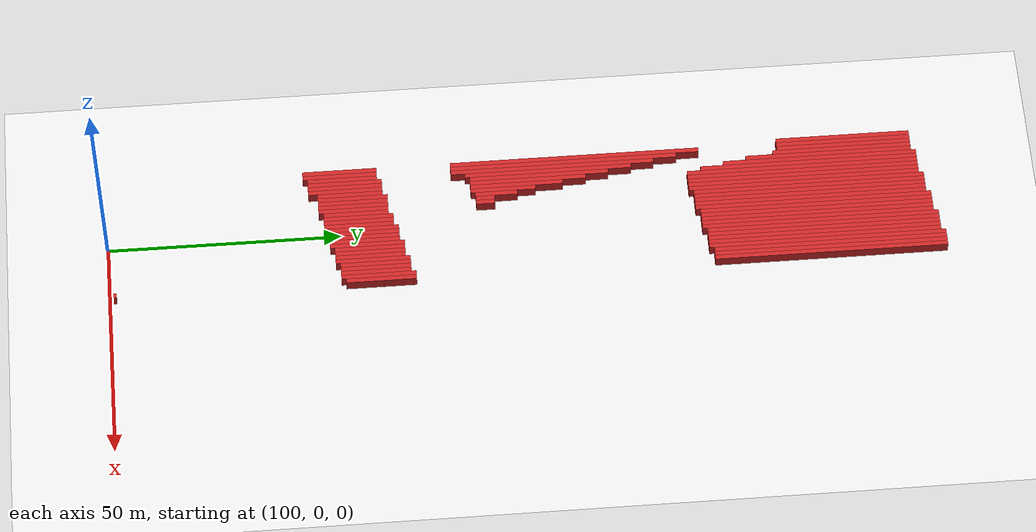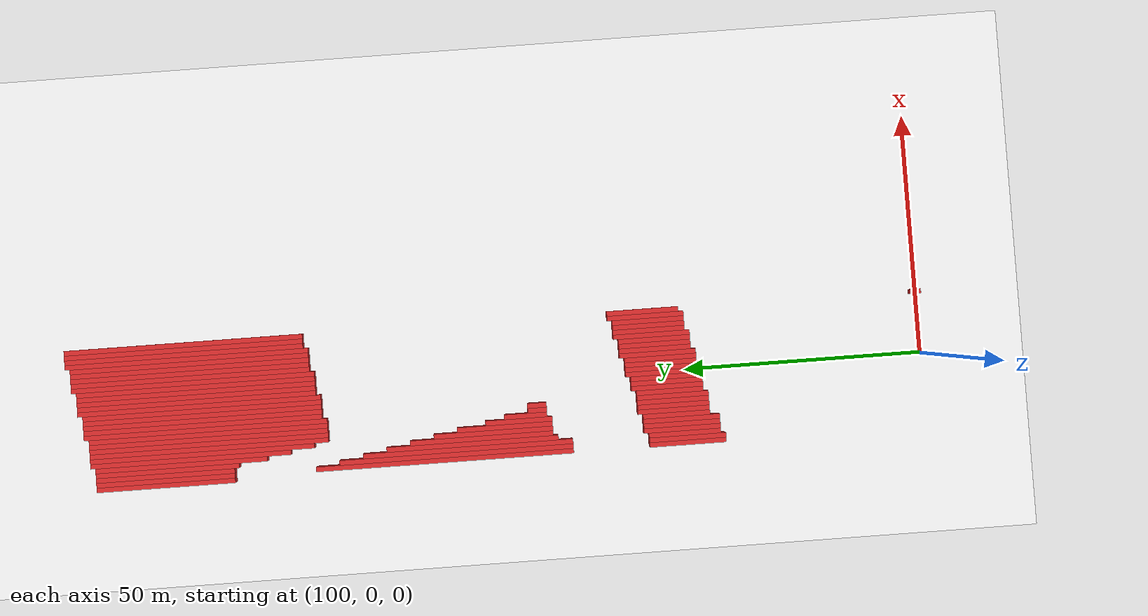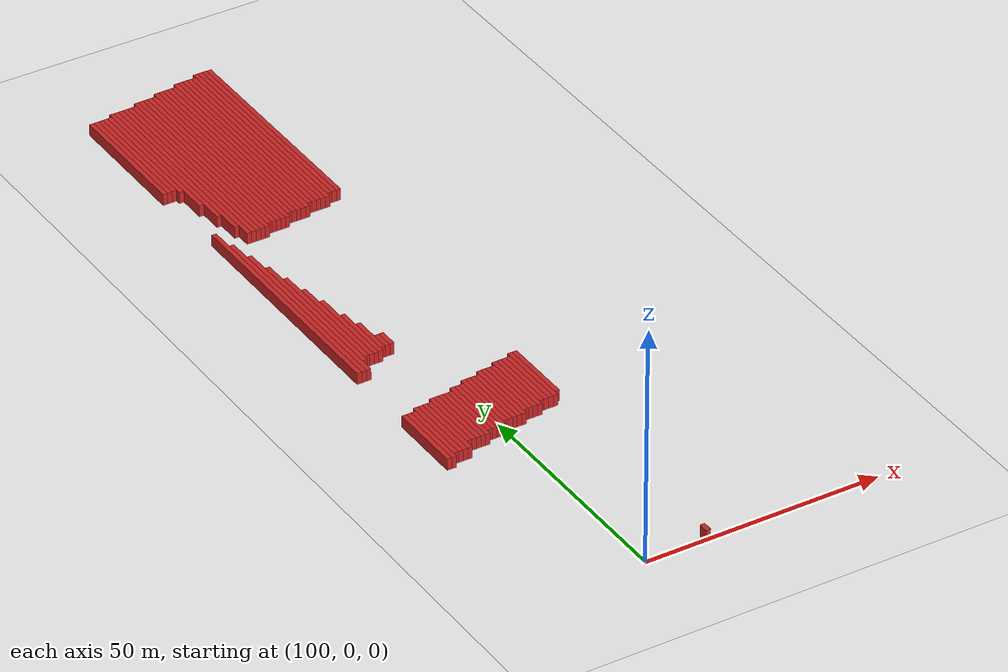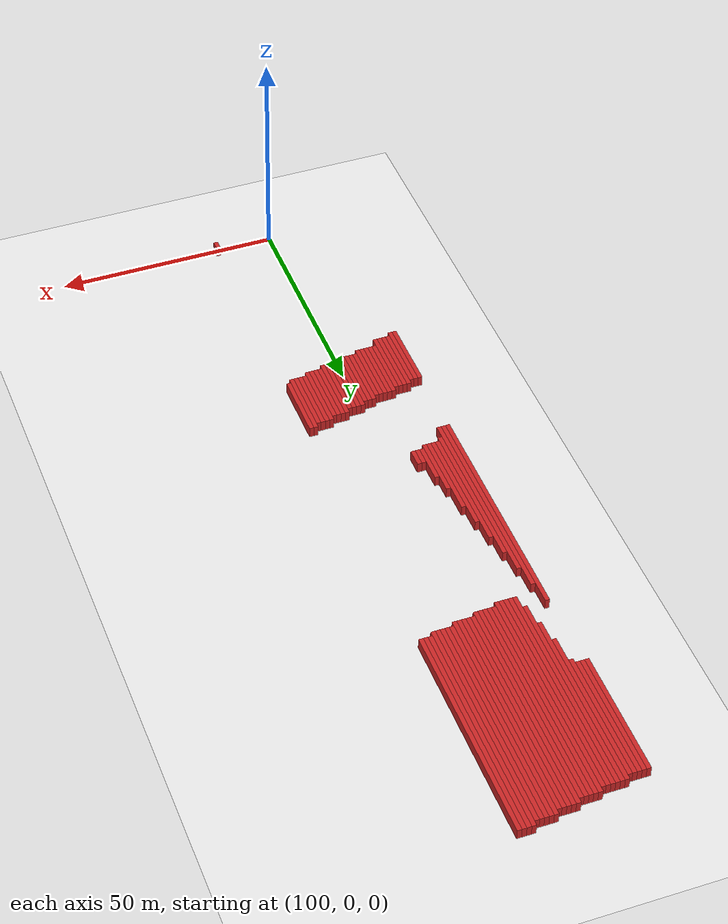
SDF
<sdf version="1.4">
 <world name="1_wall">
  <model name="ground_plane">
   <static>1</static>
   <link name="link">
    <collision name="collision">
     <geometry><plane><normal>0 0 1</normal><size>1000 1000</size></plane></geometry>
     <surface><friction><ode><mu>100</mu><mu2>50</mu2></ode></friction></surface>
    </collision>
    <visual name="visual">
     <cast_shadows>0</cast_shadows>
     <geometry><plane><normal>0 0 1</normal><size>10000 10000</size></plane></geometry>
     <material>
      <script><uri>file://media/materials/scripts/gazebo.material</uri><name>Gazebo/White</name></script>
     </material>
    </visual>
    <velocity_decay><linear>0</linear><angular>0</angular></velocity_decay>
   </link>
  </model>
  <model name="Wall_144">
   <static>1</static>
   <link name="Wall_144">
    <collision name="Wall_Collision_144">
     <geometry><box><size>29.0 1.0 2.5</size></box></geometry>
     <pose>0 0 1.25 0 -0 0</pose>
    </collision>
    <visual name="Wall_Visual_144">
     <pose>0 0 1.25 0 -0 0</pose>
     <geometry><box><size>29.0 1.0 2.5</size></box></geometry>
     <material>
      <script><uri>file://media/materials/scripts/gazebo.material</uri><name>Gazebo/Red</name></script>
     </material>
    </visual>
    <velocity_decay><linear>0</linear><angular>0</angular></velocity_decay>
    <pose>84.0 160.0 0 0 0 1.5707963267948966</pose>
   </link>
  </model>
  <model name="Wall_145">
   <static>1</static>
   <link name="Wall_145">
    <collision name="Wall_Collision_145">
     <geometry><box><size>16.0 1.0 2.5</size></box></geometry>
     <pose>0 0 1.25 0 -0 0</pose>
    </collision>
    <visual name="Wall_Visual_145">
     <pose>0 0 1.25 0 -0 0</pose>
     <geometry><box><size>16.0 1.0 2.5</size></box></geometry>
     <material>
      <script><uri>file://media/materials/scripts/gazebo.material</uri><name>Gazebo/Red</name></script>
     </material>
    </visual>
    <velocity_decay><linear>0</linear><angular>0</angular></velocity_decay>
    <pose>85.0 50.5 0 0 0 1.5707963267948966</pose>
   </link>
  </model>
  <model name="Wall_146">
   <static>1</static>
   <link name="Wall_146">
    <collision name="Wall_Collision_146">
     <geometry><box><size>54.0 1.0 2.5</size></box></geometry>
     <pose>0 0 1.25 0 -0 0</pose>
    </collision>
    <visual name="Wall_Visual_146">
     <pose>0 0 1.25 0 -0 0</pose>
     <geometry><box><size>54.0 1.0 2.5</size></box></geometry>
     <material>
      <script><uri>file://media/materials/scripts/gazebo.material</uri><name>Gazebo/Red</name></script>
     </material>
    </visual>
    <velocity_decay><linear>0</linear><angular>0</angular></velocity_decay>
    <pose>85.0 101.5 0 0 0 1.5707963267948966</pose>
   </link>
  </model>
  <model name="Wall_147">
   <static>1</static>
   <link name="Wall_147">
    <collision name="Wall_Collision_147">
     <geometry><box><size>29.0 1.0 2.5</size></box></geometry>
     <pose>0 0 1.25 0 -0 0</pose>
    </collision>
    <visual name="Wall_Visual_147">
     <pose>0 0 1.25 0 -0 0</pose>
     <geometry><box><size>29.0 1.0 2.5</size></box></geometry>
     <material>
      <script><uri>file://media/materials/scripts/gazebo.material</uri><name>Gazebo/Red</name></script>
     </material>
    </visual>
    <velocity_decay><linear>0</linear><angular>0</angular></velocity_decay>
    <pose>85.0 160.0 0 0 0 1.5707963267948966</pose>
   </link>
  </model>
  <model name="Wall_148">
   <static>1</static>
   <link name="Wall_148">
    <collision name="Wall_Collision_148">
     <geometry><box><size>16.0 1.0 2.5</size></box></geometry>
     <pose>0 0 1.25 0 -0 0</pose>
    </collision>
    <visual name="Wall_Visual_148">
     <pose>0 0 1.25 0 -0 0</pose>
     <geometry><box><size>16.0 1.0 2.5</size></box></geometry>
     <material>
      <script><uri>file://media/materials/scripts/gazebo.material</uri><name>Gazebo/Red</name></script>
     </material>
    </visual>
    <velocity_decay><linear>0</linear><angular>0</angular></velocity_decay>
    <pose>86.0 50.5 0 0 0 1.5707963267948966</pose>
   </link>
  </model>
  <model name="Wall_149">
   <static>1</static>
   <link name="Wall_149">
    <collision name="Wall_Collision_149">
     <geometry><box><size>49.0 1.0 2.5</size></box></geometry>
     <pose>0 0 1.25 0 -0 0</pose>
    </collision>
    <visual name="Wall_Visual_149">
     <pose>0 0 1.25 0 -0 0</pose>
     <geometry><box><size>49.0 1.0 2.5</size></box></geometry>
     <material>
      <script><uri>file://media/materials/scripts/gazebo.material</uri><name>Gazebo/Red</name></script>
     </material>
    </visual>
    <velocity_decay><linear>0</linear><angular>0</angular></velocity_decay>
    <pose>86.0 99.0 0 0 0 1.5707963267948966</pose>
   </link>
  </model>
  <model name="Wall_150">
   <static>1</static>
   <link name="Wall_150">
    <collision name="Wall_Collision_150">
     <geometry><box><size>29.0 1.0 2.5</size></box></geometry>
     <pose>0 0 1.25 0 -0 0</pose>
    </collision>
    <visual name="Wall_Visual_150">
     <pose>0 0 1.25 0 -0 0</pose>
     <geometry><box><size>29.0 1.0 2.5</size></box></geometry>
     <material>
      <script><uri>file://media/materials/scripts/gazebo.material</uri><name>Gazebo/Red</name></script>
     </material>
    </visual>
    <velocity_decay><linear>0</linear><angular>0</angular></velocity_decay>
    <pose>86.0 160.0 0 0 0 1.5707963267948966</pose>
   </link>
  </model>
  <model name="Wall_151">
   <static>1</static>
   <link name="Wall_151">
    <collision name="Wall_Collision_151">
     <geometry><box><size>15.0 1.0 2.5</size></box></geometry>
     <pose>0 0 1.25 0 -0 0</pose>
    </collision>
    <visual name="Wall_Visual_151">
     <pose>0 0 1.25 0 -0 0</pose>
     <geometry><box><size>15.0 1.0 2.5</size></box></geometry>
     <material>
      <script><uri>file://media/materials/scripts/gazebo.material</uri><name>Gazebo/Red</name></script>
     </material>
    </visual>
    <velocity_decay><linear>0</linear><angular>0</angular></velocity_decay>
    <pose>87.0 51.0 0 0 0 1.5707963267948966</pose>
   </link>
  </model>
  <model name="Wall_152">
   <static>1</static>
   <link name="Wall_152">
    <collision name="Wall_Collision_152">
     <geometry><box><size>44.0 1.0 2.5</size></box></geometry>
     <pose>0 0 1.25 0 -0 0</pose>
    </collision>
    <visual name="Wall_Visual_152">
     <pose>0 0 1.25 0 -0 0</pose>
     <geometry><box><size>44.0 1.0 2.5</size></box></geometry>
     <material>
      <script><uri>file://media/materials/scripts/gazebo.material</uri><name>Gazebo/Red</name></script>
     </material>
    </visual>
    <velocity_decay><linear>0</linear><angular>0</angular></velocity_decay>
    <pose>87.0 96.5 0 0 0 1.5707963267948966</pose>
   </link>
  </model>
  <model name="Wall_153">
   <static>1</static>
   <link name="Wall_153">
    <collision name="Wall_Collision_153">
     <geometry><box><size>30.0 1.0 2.5</size></box></geometry>
     <pose>0 0 1.25 0 -0 0</pose>
    </collision>
    <visual name="Wall_Visual_153">
     <pose>0 0 1.25 0 -0 0</pose>
     <geometry><box><size>30.0 1.0 2.5</size></box></geometry>
     <material>
      <script><uri>file://media/materials/scripts/gazebo.material</uri><name>Gazebo/Red</name></script>
     </material>
    </visual>
    <velocity_decay><linear>0</linear><angular>0</angular></velocity_decay>
    <pose>87.0 159.5 0 0 0 1.5707963267948966</pose>
   </link>
  </model>
  <model name="Wall_154">
   <static>1</static>
   <link name="Wall_154">
    <collision name="Wall_Collision_154">
     <geometry><box><size>16.0 1.0 2.5</size></box></geometry>
     <pose>0 0 1.25 0 -0 0</pose>
    </collision>
    <visual name="Wall_Visual_154">
     <pose>0 0 1.25 0 -0 0</pose>
     <geometry><box><size>16.0 1.0 2.5</size></box></geometry>
     <material>
      <script><uri>file://media/materials/scripts/gazebo.material</uri><name>Gazebo/Red</name></script>
     </material>
    </visual>
    <velocity_decay><linear>0</linear><angular>0</angular></velocity_decay>
    <pose>88.0 51.5 0 0 0 1.5707963267948966</pose>
   </link>
  </model>
  <model name="Wall_155">
   <static>1</static>
   <link name="Wall_155">
    <collision name="Wall_Collision_155">
     <geometry><box><size>36.0 1.0 2.5</size></box></geometry>
     <pose>0 0 1.25 0 -0 0</pose>
    </collision>
    <visual name="Wall_Visual_155">
     <pose>0 0 1.25 0 -0 0</pose>
     <geometry><box><size>36.0 1.0 2.5</size></box></geometry>
     <material>
      <script><uri>file://media/materials/scripts/gazebo.material</uri><name>Gazebo/Red</name></script>
     </material>
    </visual>
    <velocity_decay><linear>0</linear><angular>0</angular></velocity_decay>
    <pose>88.0 95.5 0 0 0 1.5707963267948966</pose>
   </link>
  </model>
  <model name="Wall_156">
   <static>1</static>
   <link name="Wall_156">
    <collision name="Wall_Collision_156">
     <geometry><box><size>36.0 1.0 2.5</size></box></geometry>
     <pose>0 0 1.25 0 -0 0</pose>
    </collision>
    <visual name="Wall_Visual_156">
     <pose>0 0 1.25 0 -0 0</pose>
     <geometry><box><size>36.0 1.0 2.5</size></box></geometry>
     <material>
      <script><uri>file://media/materials/scripts/gazebo.material</uri><name>Gazebo/Red</name></script>
     </material>
    </visual>
    <velocity_decay><linear>0</linear><angular>0</angular></velocity_decay>
    <pose>88.0 156.5 0 0 0 1.5707963267948966</pose>
   </link>
  </model>
  <model name="Wall_157">
   <static>1</static>
   <link name="Wall_157">
    <collision name="Wall_Collision_157">
     <geometry><box><size>16.0 1.0 2.5</size></box></geometry>
     <pose>0 0 1.25 0 -0 0</pose>
    </collision>
    <visual name="Wall_Visual_157">
     <pose>0 0 1.25 0 -0 0</pose>
     <geometry><box><size>16.0 1.0 2.5</size></box></geometry>
     <material>
      <script><uri>file://media/materials/scripts/gazebo.material</uri><name>Gazebo/Red</name></script>
     </material>
    </visual>
    <velocity_decay><linear>0</linear><angular>0</angular></velocity_decay>
    <pose>89.0 51.5 0 0 0 1.5707963267948966</pose>
   </link>
  </model>
  <model name="Wall_158">
   <static>1</static>
   <link name="Wall_158">
    <collision name="Wall_Collision_158">
     <geometry><box><size>30.0 1.0 2.5</size></box></geometry>
     <pose>0 0 1.25 0 -0 0</pose>
    </collision>
    <visual name="Wall_Visual_158">
     <pose>0 0 1.25 0 -0 0</pose>
     <geometry><box><size>30.0 1.0 2.5</size></box></geometry>
     <material>
      <script><uri>file://media/materials/scripts/gazebo.material</uri><name>Gazebo/Red</name></script>
     </material>
    </visual>
    <velocity_decay><linear>0</linear><angular>0</angular></velocity_decay>
    <pose>89.0 93.5 0 0 0 1.5707963267948966</pose>
   </link>
  </model>
  <model name="Wall_159">
   <static>1</static>
   <link name="Wall_159">
    <collision name="Wall_Collision_159">
     <geometry><box><size>42.0 1.0 2.5</size></box></geometry>
     <pose>0 0 1.25 0 -0 0</pose>
    </collision>
    <visual name="Wall_Visual_159">
     <pose>0 0 1.25 0 -0 0</pose>
     <geometry><box><size>42.0 1.0 2.5</size></box></geometry>
     <material>
      <script><uri>file://media/materials/scripts/gazebo.material</uri><name>Gazebo/Red</name></script>
     </material>
    </visual>
    <velocity_decay><linear>0</linear><angular>0</angular></velocity_decay>
    <pose>89.0 154.5 0 0 0 1.5707963267948966</pose>
   </link>
  </model>
  <model name="Wall_160">
   <static>1</static>
   <link name="Wall_160">
    <collision name="Wall_Collision_160">
     <geometry><box><size>16.0 1.0 2.5</size></box></geometry>
     <pose>0 0 1.25 0 -0 0</pose>
    </collision>
    <visual name="Wall_Visual_160">
     <pose>0 0 1.25 0 -0 0</pose>
     <geometry><box><size>16.0 1.0 2.5</size></box></geometry>
     <material>
      <script><uri>file://media/materials/scripts/gazebo.material</uri><name>Gazebo/Red</name></script>
     </material>
    </visual>
    <velocity_decay><linear>0</linear><angular>0</angular></velocity_decay>
    <pose>90.0 51.5 0 0 0 1.5707963267948966</pose>
   </link>
  </model>
  <model name="Wall_161">
   <static>1</static>
   <link name="Wall_161">
    <collision name="Wall_Collision_161">
     <geometry><box><size>25.0 1.0 2.5</size></box></geometry>
     <pose>0 0 1.25 0 -0 0</pose>
    </collision>
    <visual name="Wall_Visual_161">
     <pose>0 0 1.25 0 -0 0</pose>
     <geometry><box><size>25.0 1.0 2.5</size></box></geometry>
     <material>
      <script><uri>file://media/materials/scripts/gazebo.material</uri><name>Gazebo/Red</name></script>
     </material>
    </visual>
    <velocity_decay><linear>0</linear><angular>0</angular></velocity_decay>
    <pose>90.0 91.0 0 0 0 1.5707963267948966</pose>
   </link>
  </model>
  <model name="Wall_162">
   <static>1</static>
   <link name="Wall_162">
    <collision name="Wall_Collision_162">
     <geometry><box><size>47.0 1.0 2.5</size></box></geometry>
     <pose>0 0 1.25 0 -0 0</pose>
    </collision>
    <visual name="Wall_Visual_162">
     <pose>0 0 1.25 0 -0 0</pose>
     <geometry><box><size>47.0 1.0 2.5</size></box></geometry>
     <material>
      <script><uri>file://media/materials/scripts/gazebo.material</uri><name>Gazebo/Red</name></script>
     </material>
    </visual>
    <velocity_decay><linear>0</linear><angular>0</angular></velocity_decay>
    <pose>90.0 152.0 0 0 0 1.5707963267948966</pose>
   </link>
  </model>
  <model name="Wall_163">
   <static>1</static>
   <link name="Wall_163">
    <collision name="Wall_Collision_163">
     <geometry><box><size>14.0 1.0 2.5</size></box></geometry>
     <pose>0 0 1.25 0 -0 0</pose>
    </collision>
    <visual name="Wall_Visual_163">
     <pose>0 0 1.25 0 -0 0</pose>
     <geometry><box><size>14.0 1.0 2.5</size></box></geometry>
     <material>
      <script><uri>file://media/materials/scripts/gazebo.material</uri><name>Gazebo/Red</name></script>
     </material>
    </visual>
    <velocity_decay><linear>0</linear><angular>0</angular></velocity_decay>
    <pose>91.0 52.5 0 0 0 1.5707963267948966</pose>
   </link>
  </model>
  <model name="Wall_164">
   <static>1</static>
   <link name="Wall_164">
    <collision name="Wall_Collision_164">
     <geometry><box><size>20.0 1.0 2.5</size></box></geometry>
     <pose>0 0 1.25 0 -0 0</pose>
    </collision>
    <visual name="Wall_Visual_164">
     <pose>0 0 1.25 0 -0 0</pose>
     <geometry><box><size>20.0 1.0 2.5</size></box></geometry>
     <material>
      <script><uri>file://media/materials/scripts/gazebo.material</uri><name>Gazebo/Red</name></script>
     </material>
    </visual>
    <velocity_decay><linear>0</linear><angular>0</angular></velocity_decay>
    <pose>91.0 88.5 0 0 0 1.5707963267948966</pose>
   </link>
  </model>
  <model name="Wall_165">
   <static>1</static>
   <link name="Wall_165">
    <collision name="Wall_Collision_165">
     <geometry><box><size>50.0 1.0 2.5</size></box></geometry>
     <pose>0 0 1.25 0 -0 0</pose>
    </collision>
    <visual name="Wall_Visual_165">
     <pose>0 0 1.25 0 -0 0</pose>
     <geometry><box><size>50.0 1.0 2.5</size></box></geometry>
     <material>
      <script><uri>file://media/materials/scripts/gazebo.material</uri><name>Gazebo/Red</name></script>
     </material>
    </visual>
    <velocity_decay><linear>0</linear><angular>0</angular></velocity_decay>
    <pose>91.0 150.5 0 0 0 1.5707963267948966</pose>
   </link>
  </model>
  <model name="Wall_166">
   <static>1</static>
   <link name="Wall_166">
    <collision name="Wall_Collision_166">
     <geometry><box><size>15.0 1.0 2.5</size></box></geometry>
     <pose>0 0 1.25 0 -0 0</pose>
    </collision>
    <visual name="Wall_Visual_166">
     <pose>0 0 1.25 0 -0 0</pose>
     <geometry><box><size>15.0 1.0 2.5</size></box></geometry>
     <material>
      <script><uri>file://media/materials/scripts/gazebo.material</uri><name>Gazebo/Red</name></script>
     </material>
    </visual>
    <velocity_decay><linear>0</linear><angular>0</angular></velocity_decay>
    <pose>92.0 53.0 0 0 0 1.5707963267948966</pose>
   </link>
  </model>
  <model name="Wall_167">
   <static>1</static>
   <link name="Wall_167">
    <collision name="Wall_Collision_167">
     <geometry><box><size>14.0 1.0 2.5</size></box></geometry>
     <pose>0 0 1.25 0 -0 0</pose>
    </collision>
    <visual name="Wall_Visual_167">
     <pose>0 0 1.25 0 -0 0</pose>
     <geometry><box><size>14.0 1.0 2.5</size></box></geometry>
     <material>
      <script><uri>file://media/materials/scripts/gazebo.material</uri><name>Gazebo/Red</name></script>
     </material>
    </visual>
    <velocity_decay><linear>0</linear><angular>0</angular></velocity_decay>
    <pose>92.0 85.5 0 0 0 1.5707963267948966</pose>
   </link>
  </model>
  <model name="Wall_168">
   <static>1</static>
   <link name="Wall_168">
    <collision name="Wall_Collision_168">
     <geometry><box><size>50.0 1.0 2.5</size></box></geometry>
     <pose>0 0 1.25 0 -0 0</pose>
    </collision>
    <visual name="Wall_Visual_168">
     <pose>0 0 1.25 0 -0 0</pose>
     <geometry><box><size>50.0 1.0 2.5</size></box></geometry>
     <material>
      <script><uri>file://media/materials/scripts/gazebo.material</uri><name>Gazebo/Red</name></script>
     </material>
    </visual>
    <velocity_decay><linear>0</linear><angular>0</angular></velocity_decay>
    <pose>92.0 150.5 0 0 0 1.5707963267948966</pose>
   </link>
  </model>
  <model name="Wall_169">
   <static>1</static>
   <link name="Wall_169">
    <collision name="Wall_Collision_169">
     <geometry><box><size>15.0 1.0 2.5</size></box></geometry>
     <pose>0 0 1.25 0 -0 0</pose>
    </collision>
    <visual name="Wall_Visual_169">
     <pose>0 0 1.25 0 -0 0</pose>
     <geometry><box><size>15.0 1.0 2.5</size></box></geometry>
     <material>
      <script><uri>file://media/materials/scripts/gazebo.material</uri><name>Gazebo/Red</name></script>
     </material>
    </visual>
    <velocity_decay><linear>0</linear><angular>0</angular></velocity_decay>
    <pose>93.0 53.0 0 0 0 1.5707963267948966</pose>
   </link>
  </model>
  <model name="Wall_170">
   <static>1</static>
   <link name="Wall_170">
    <collision name="Wall_Collision_170">
     <geometry><box><size>9.0 1.0 2.5</size></box></geometry>
     <pose>0 0 1.25 0 -0 0</pose>
    </collision>
    <visual name="Wall_Visual_170">
     <pose>0 0 1.25 0 -0 0</pose>
     <geometry><box><size>9.0 1.0 2.5</size></box></geometry>
     <material>
      <script><uri>file://media/materials/scripts/gazebo.material</uri><name>Gazebo/Red</name></script>
     </material>
    </visual>
    <velocity_decay><linear>0</linear><angular>0</angular></velocity_decay>
    <pose>93.0 84.0 0 0 0 1.5707963267948966</pose>
   </link>
  </model>
  <model name="Wall_171">
   <static>1</static>
   <link name="Wall_171">
    <collision name="Wall_Collision_171">
     <geometry><box><size>50.0 1.0 2.5</size></box></geometry>
     <pose>0 0 1.25 0 -0 0</pose>
    </collision>
    <visual name="Wall_Visual_171">
     <pose>0 0 1.25 0 -0 0</pose>
     <geometry><box><size>50.0 1.0 2.5</size></box></geometry>
     <material>
      <script><uri>file://media/materials/scripts/gazebo.material</uri><name>Gazebo/Red</name></script>
     </material>
    </visual>
    <velocity_decay><linear>0</linear><angular>0</angular></velocity_decay>
    <pose>93.0 150.5 0 0 0 1.5707963267948966</pose>
   </link>
  </model>
  <model name="Wall_172">
   <static>1</static>
   <link name="Wall_172">
    <collision name="Wall_Collision_172">
     <geometry><box><size>15.0 1.0 2.5</size></box></geometry>
     <pose>0 0 1.25 0 -0 0</pose>
    </collision>
    <visual name="Wall_Visual_172">
     <pose>0 0 1.25 0 -0 0</pose>
     <geometry><box><size>15.0 1.0 2.5</size></box></geometry>
     <material>
      <script><uri>file://media/materials/scripts/gazebo.material</uri><name>Gazebo/Red</name></script>
     </material>
    </visual>
    <velocity_decay><linear>0</linear><angular>0</angular></velocity_decay>
    <pose>94.0 53.0 0 0 0 1.5707963267948966</pose>
   </link>
  </model>
  <model name="Wall_173">
   <static>1</static>
   <link name="Wall_173">
    <collision name="Wall_Collision_173">
     <geometry><box><size>4.0 1.0 2.5</size></box></geometry>
     <pose>0 0 1.25 0 -0 0</pose>
    </collision>
    <visual name="Wall_Visual_173">
     <pose>0 0 1.25 0 -0 0</pose>
     <geometry><box><size>4.0 1.0 2.5</size></box></geometry>
     <material>
      <script><uri>file://media/materials/scripts/gazebo.material</uri><name>Gazebo/Red</name></script>
     </material>
    </visual>
    <velocity_decay><linear>0</linear><angular>0</angular></velocity_decay>
    <pose>94.0 81.5 0 0 0 1.5707963267948966</pose>
   </link>
  </model>
  <model name="Wall_174">
   <static>1</static>
   <link name="Wall_174">
    <collision name="Wall_Collision_174">
     <geometry><box><size>50.0 1.0 2.5</size></box></geometry>
     <pose>0 0 1.25 0 -0 0</pose>
    </collision>
    <visual name="Wall_Visual_174">
     <pose>0 0 1.25 0 -0 0</pose>
     <geometry><box><size>50.0 1.0 2.5</size></box></geometry>
     <material>
      <script><uri>file://media/materials/scripts/gazebo.material</uri><name>Gazebo/Red</name></script>
     </material>
    </visual>
    <velocity_decay><linear>0</linear><angular>0</angular></velocity_decay>
    <pose>94.0 150.5 0 0 0 1.5707963267948966</pose>
   </link>
  </model>
  <model name="Wall_175">
   <static>1</static>
   <link name="Wall_175">
    <collision name="Wall_Collision_175">
     <geometry><box><size>15.0 1.0 2.5</size></box></geometry>
     <pose>0 0 1.25 0 -0 0</pose>
    </collision>
    <visual name="Wall_Visual_175">
     <pose>0 0 1.25 0 -0 0</pose>
     <geometry><box><size>15.0 1.0 2.5</size></box></geometry>
     <material>
      <script><uri>file://media/materials/scripts/gazebo.material</uri><name>Gazebo/Red</name></script>
     </material>
    </visual>
    <velocity_decay><linear>0</linear><angular>0</angular></velocity_decay>
    <pose>95.0 53.0 0 0 0 1.5707963267948966</pose>
   </link>
  </model>
  <model name="Wall_176">
   <static>1</static>
   <link name="Wall_176">
    <collision name="Wall_Collision_176">
     <geometry><box><size>4.0 1.0 2.5</size></box></geometry>
     <pose>0 0 1.25 0 -0 0</pose>
    </collision>
    <visual name="Wall_Visual_176">
     <pose>0 0 1.25 0 -0 0</pose>
     <geometry><box><size>4.0 1.0 2.5</size></box></geometry>
     <material>
      <script><uri>file://media/materials/scripts/gazebo.material</uri><name>Gazebo/Red</name></script>
     </material>
    </visual>
    <velocity_decay><linear>0</linear><angular>0</angular></velocity_decay>
    <pose>95.0 81.5 0 0 0 1.5707963267948966</pose>
   </link>
  </model>
  <model name="Wall_177">
   <static>1</static>
   <link name="Wall_177">
    <collision name="Wall_Collision_177">
     <geometry><box><size>51.0 1.0 2.5</size></box></geometry>
     <pose>0 0 1.25 0 -0 0</pose>
    </collision>
    <visual name="Wall_Visual_177">
     <pose>0 0 1.25 0 -0 0</pose>
     <geometry><box><size>51.0 1.0 2.5</size></box></geometry>
     <material>
      <script><uri>file://media/materials/scripts/gazebo.material</uri><name>Gazebo/Red</name></script>
     </material>
    </visual>
    <velocity_decay><linear>0</linear><angular>0</angular></velocity_decay>
    <pose>95.0 151.0 0 0 0 1.5707963267948966</pose>
   </link>
  </model>
  <model name="Wall_178">
   <static>1</static>
   <link name="Wall_178">
    <collision name="Wall_Collision_178">
     <geometry><box><size>14.0 1.0 2.5</size></box></geometry>
     <pose>0 0 1.25 0 -0 0</pose>
    </collision>
    <visual name="Wall_Visual_178">
     <pose>0 0 1.25 0 -0 0</pose>
     <geometry><box><size>14.0 1.0 2.5</size></box></geometry>
     <material>
      <script><uri>file://media/materials/scripts/gazebo.material</uri><name>Gazebo/Red</name></script>
     </material>
    </visual>
    <velocity_decay><linear>0</linear><angular>0</angular></velocity_decay>
    <pose>96.0 53.5 0 0 0 1.5707963267948966</pose>
   </link>
  </model>
  <model name="Wall_179">
   <static>1</static>
   <link name="Wall_179">
    <collision name="Wall_Collision_179">
     <geometry><box><size>50.0 1.0 2.5</size></box></geometry>
     <pose>0 0 1.25 0 -0 0</pose>
    </collision>
    <visual name="Wall_Visual_179">
     <pose>0 0 1.25 0 -0 0</pose>
     <geometry><box><size>50.0 1.0 2.5</size></box></geometry>
     <material>
      <script><uri>file://media/materials/scripts/gazebo.material</uri><name>Gazebo/Red</name></script>
     </material>
    </visual>
    <velocity_decay><linear>0</linear><angular>0</angular></velocity_decay>
    <pose>96.0 151.5 0 0 0 1.5707963267948966</pose>
   </link>
  </model>
  <model name="Wall_180">
   <static>1</static>
   <link name="Wall_180">
    <collision name="Wall_Collision_180">
     <geometry><box><size>15.0 1.0 2.5</size></box></geometry>
     <pose>0 0 1.25 0 -0 0</pose>
    </collision>
    <visual name="Wall_Visual_180">
     <pose>0 0 1.25 0 -0 0</pose>
     <geometry><box><size>15.0 1.0 2.5</size></box></geometry>
     <material>
      <script><uri>file://media/materials/scripts/gazebo.material</uri><name>Gazebo/Red</name></script>
     </material>
    </visual>
    <velocity_decay><linear>0</linear><angular>0</angular></velocity_decay>
    <pose>97.0 54.0 0 0 0 1.5707963267948966</pose>
   </link>
  </model>
  <model name="Wall_181">
   <static>1</static>
   <link name="Wall_181">
    <collision name="Wall_Collision_181">
     <geometry><box><size>50.0 1.0 2.5</size></box></geometry>
     <pose>0 0 1.25 0 -0 0</pose>
    </collision>
    <visual name="Wall_Visual_181">
     <pose>0 0 1.25 0 -0 0</pose>
     <geometry><box><size>50.0 1.0 2.5</size></box></geometry>
     <material>
      <script><uri>file://media/materials/scripts/gazebo.material</uri><name>Gazebo/Red</name></script>
     </material>
    </visual>
    <velocity_decay><linear>0</linear><angular>0</angular></velocity_decay>
    <pose>97.0 151.5 0 0 0 1.5707963267948966</pose>
   </link>
  </model>
  <model name="Wall_182">
   <static>1</static>
   <link name="Wall_182">
    <collision name="Wall_Collision_182">
     <geometry><box><size>15.0 1.0 2.5</size></box></geometry>
     <pose>0 0 1.25 0 -0 0</pose>
    </collision>
    <visual name="Wall_Visual_182">
     <pose>0 0 1.25 0 -0 0</pose>
     <geometry><box><size>15.0 1.0 2.5</size></box></geometry>
     <material>
      <script><uri>file://media/materials/scripts/gazebo.material</uri><name>Gazebo/Red</name></script>
     </material>
    </visual>
    <velocity_decay><linear>0</linear><angular>0</angular></velocity_decay>
    <pose>98.0 54.0 0 0 0 1.5707963267948966</pose>
   </link>
  </model>
  <model name="Wall_183">
   <static>1</static>
   <link name="Wall_183">
    <collision name="Wall_Collision_183">
     <geometry><box><size>50.0 1.0 2.5</size></box></geometry>
     <pose>0 0 1.25 0 -0 0</pose>
    </collision>
    <visual name="Wall_Visual_183">
     <pose>0 0 1.25 0 -0 0</pose>
     <geometry><box><size>50.0 1.0 2.5</size></box></geometry>
     <material>
      <script><uri>file://media/materials/scripts/gazebo.material</uri><name>Gazebo/Red</name></script>
     </material>
    </visual>
    <velocity_decay><linear>0</linear><angular>0</angular></velocity_decay>
    <pose>98.0 151.5 0 0 0 1.5707963267948966</pose>
   </link>
  </model>
  <model name="Wall_184">
   <static>1</static>
   <link name="Wall_184">
    <collision name="Wall_Collision_184">
     <geometry><box><size>15.0 1.0 2.5</size></box></geometry>
     <pose>0 0 1.25 0 -0 0</pose>
    </collision>
    <visual name="Wall_Visual_184">
     <pose>0 0 1.25 0 -0 0</pose>
     <geometry><box><size>15.0 1.0 2.5</size></box></geometry>
     <material>
      <script><uri>file://media/materials/scripts/gazebo.material</uri><name>Gazebo/Red</name></script>
     </material>
    </visual>
    <velocity_decay><linear>0</linear><angular>0</angular></velocity_decay>
    <pose>99.0 54.0 0 0 0 1.5707963267948966</pose>
   </link>
  </model>
  <model name="Wall_185">
   <static>1</static>
   <link name="Wall_185">
    <collision name="Wall_Collision_185">
     <geometry><box><size>50.0 1.0 2.5</size></box></geometry>
     <pose>0 0 1.25 0 -0 0</pose>
    </collision>
    <visual name="Wall_Visual_185">
     <pose>0 0 1.25 0 -0 0</pose>
     <geometry><box><size>50.0 1.0 2.5</size></box></geometry>
     <material>
      <script><uri>file://media/materials/scripts/gazebo.material</uri><name>Gazebo/Red</name></script>
     </material>
    </visual>
    <velocity_decay><linear>0</linear><angular>0</angular></velocity_decay>
    <pose>99.0 151.5 0 0 0 1.5707963267948966</pose>
   </link>
  </model>
  <model name="Wall_186">
   <static>1</static>
   <link name="Wall_186">
    <collision name="Wall_Collision_186">
     <geometry><box><size>15.0 1.0 2.5</size></box></geometry>
     <pose>0 0 1.25 0 -0 0</pose>
    </collision>
    <visual name="Wall_Visual_186">
     <pose>0 0 1.25 0 -0 0</pose>
     <geometry><box><size>15.0 1.0 2.5</size></box></geometry>
     <material>
      <script><uri>file://media/materials/scripts/gazebo.material</uri><name>Gazebo/Red</name></script>
     </material>
    </visual>
    <velocity_decay><linear>0</linear><angular>0</angular></velocity_decay>
    <pose>100.0 55.0 0 0 0 1.5707963267948966</pose>
   </link>
  </model>
  <model name="Wall_187">
   <static>1</static>
   <link name="Wall_187">
    <collision name="Wall_Collision_187">
     <geometry><box><size>51.0 1.0 2.5</size></box></geometry>
     <pose>0 0 1.25 0 -0 0</pose>
    </collision>
    <visual name="Wall_Visual_187">
     <pose>0 0 1.25 0 -0 0</pose>
     <geometry><box><size>51.0 1.0 2.5</size></box></geometry>
     <material>
      <script><uri>file://media/materials/scripts/gazebo.material</uri><name>Gazebo/Red</name></script>
     </material>
    </visual>
    <velocity_decay><linear>0</linear><angular>0</angular></velocity_decay>
    <pose>100.0 152.0 0 0 0 1.5707963267948966</pose>
   </link>
  </model>
  <model name="Wall_188">
   <static>1</static>
   <link name="Wall_188">
    <collision name="Wall_Collision_188">
     <geometry><box><size>15.0 1.0 2.5</size></box></geometry>
     <pose>0 0 1.25 0 -0 0</pose>
    </collision>
    <visual name="Wall_Visual_188">
     <pose>0 0 1.25 0 -0 0</pose>
     <geometry><box><size>15.0 1.0 2.5</size></box></geometry>
     <material>
      <script><uri>file://media/materials/scripts/gazebo.material</uri><name>Gazebo/Red</name></script>
     </material>
    </visual>
    <velocity_decay><linear>0</linear><angular>0</angular></velocity_decay>
    <pose>101.0 55.0 0 0 0 1.5707963267948966</pose>
   </link>
  </model>
  <model name="Wall_189">
   <static>1</static>
   <link name="Wall_189">
    <collision name="Wall_Collision_189">
     <geometry><box><size>50.0 1.0 2.5</size></box></geometry>
     <pose>0 0 1.25 0 -0 0</pose>
    </collision>
    <visual name="Wall_Visual_189">
     <pose>0 0 1.25 0 -0 0</pose>
     <geometry><box><size>50.0 1.0 2.5</size></box></geometry>
     <material>
      <script><uri>file://media/materials/scripts/gazebo.material</uri><name>Gazebo/Red</name></script>
     </material>
    </visual>
    <velocity_decay><linear>0</linear><angular>0</angular></velocity_decay>
    <pose>101.0 152.5 0 0 0 1.5707963267948966</pose>
   </link>
  </model>
  <model name="Wall_190">
   <static>1</static>
   <link name="Wall_190">
    <collision name="Wall_Collision_190">
     <geometry><box><size>15.0 1.0 2.5</size></box></geometry>
     <pose>0 0 1.25 0 -0 0</pose>
    </collision>
    <visual name="Wall_Visual_190">
     <pose>0 0 1.25 0 -0 0</pose>
     <geometry><box><size>15.0 1.0 2.5</size></box></geometry>
     <material>
      <script><uri>file://media/materials/scripts/gazebo.material</uri><name>Gazebo/Red</name></script>
     </material>
    </visual>
    <velocity_decay><linear>0</linear><angular>0</angular></velocity_decay>
    <pose>102.0 55.0 0 0 0 1.5707963267948966</pose>
   </link>
  </model>
  <model name="Wall_191">
   <static>1</static>
   <link name="Wall_191">
    <collision name="Wall_Collision_191">
     <geometry><box><size>50.0 1.0 2.5</size></box></geometry>
     <pose>0 0 1.25 0 -0 0</pose>
    </collision>
    <visual name="Wall_Visual_191">
     <pose>0 0 1.25 0 -0 0</pose>
     <geometry><box><size>50.0 1.0 2.5</size></box></geometry>
     <material>
      <script><uri>file://media/materials/scripts/gazebo.material</uri><name>Gazebo/Red</name></script>
     </material>
    </visual>
    <velocity_decay><linear>0</linear><angular>0</angular></velocity_decay>
    <pose>102.0 152.5 0 0 0 1.5707963267948966</pose>
   </link>
  </model>
  <model name="Wall_192">
   <static>1</static>
   <link name="Wall_192">
    <collision name="Wall_Collision_192">
     <geometry><box><size>15.0 1.0 2.5</size></box></geometry>
     <pose>0 0 1.25 0 -0 0</pose>
    </collision>
    <visual name="Wall_Visual_192">
     <pose>0 0 1.25 0 -0 0</pose>
     <geometry><box><size>15.0 1.0 2.5</size></box></geometry>
     <material>
      <script><uri>file://media/materials/scripts/gazebo.material</uri><name>Gazebo/Red</name></script>
     </material>
    </visual>
    <velocity_decay><linear>0</linear><angular>0</angular></velocity_decay>
    <pose>103.0 55.0 0 0 0 1.5707963267948966</pose>
   </link>
  </model>
  <model name="Wall_193">
   <static>1</static>
   <link name="Wall_193">
    <collision name="Wall_Collision_193">
     <geometry><box><size>50.0 1.0 2.5</size></box></geometry>
     <pose>0 0 1.25 0 -0 0</pose>
    </collision>
    <visual name="Wall_Visual_193">
     <pose>0 0 1.25 0 -0 0</pose>
     <geometry><box><size>50.0 1.0 2.5</size></box></geometry>
     <material>
      <script><uri>file://media/materials/scripts/gazebo.material</uri><name>Gazebo/Red</name></script>
     </material>
    </visual>
    <velocity_decay><linear>0</linear><angular>0</angular></velocity_decay>
    <pose>103.0 152.5 0 0 0 1.5707963267948966</pose>
   </link>
  </model>
  <model name="Wall_194">
   <static>1</static>
   <link name="Wall_194">
    <collision name="Wall_Collision_194">
     <geometry><box><size>16.0 1.0 2.5</size></box></geometry>
     <pose>0 0 1.25 0 -0 0</pose>
    </collision>
    <visual name="Wall_Visual_194">
     <pose>0 0 1.25 0 -0 0</pose>
     <geometry><box><size>16.0 1.0 2.5</size></box></geometry>
     <material>
      <script><uri>file://media/materials/scripts/gazebo.material</uri><name>Gazebo/Red</name></script>
     </material>
    </visual>
    <velocity_decay><linear>0</linear><angular>0</angular></velocity_decay>
    <pose>104.0 55.5 0 0 0 1.5707963267948966</pose>
   </link>
  </model>
  <model name="Wall_195">
   <static>1</static>
   <link name="Wall_195">
    <collision name="Wall_Collision_195">
     <geometry><box><size>50.0 1.0 2.5</size></box></geometry>
     <pose>0 0 1.25 0 -0 0</pose>
    </collision>
    <visual name="Wall_Visual_195">
     <pose>0 0 1.25 0 -0 0</pose>
     <geometry><box><size>50.0 1.0 2.5</size></box></geometry>
     <material>
      <script><uri>file://media/materials/scripts/gazebo.material</uri><name>Gazebo/Red</name></script>
     </material>
    </visual>
    <velocity_decay><linear>0</linear><angular>0</angular></velocity_decay>
    <pose>104.0 152.5 0 0 0 1.5707963267948966</pose>
   </link>
  </model>
  <model name="Wall_196">
   <static>1</static>
   <link name="Wall_196">
    <collision name="Wall_Collision_196">
     <geometry><box><size>15.0 1.0 2.5</size></box></geometry>
     <pose>0 0 1.25 0 -0 0</pose>
    </collision>
    <visual name="Wall_Visual_196">
     <pose>0 0 1.25 0 -0 0</pose>
     <geometry><box><size>15.0 1.0 2.5</size></box></geometry>
     <material>
      <script><uri>file://media/materials/scripts/gazebo.material</uri><name>Gazebo/Red</name></script>
     </material>
    </visual>
    <velocity_decay><linear>0</linear><angular>0</angular></velocity_decay>
    <pose>105.0 56.0 0 0 0 1.5707963267948966</pose>
   </link>
  </model>
  <model name="Wall_197">
   <static>1</static>
   <link name="Wall_197">
    <collision name="Wall_Collision_197">
     <geometry><box><size>51.0 1.0 2.5</size></box></geometry>
     <pose>0 0 1.25 0 -0 0</pose>
    </collision>
    <visual name="Wall_Visual_197">
     <pose>0 0 1.25 0 -0 0</pose>
     <geometry><box><size>51.0 1.0 2.5</size></box></geometry>
     <material>
      <script><uri>file://media/materials/scripts/gazebo.material</uri><name>Gazebo/Red</name></script>
     </material>
    </visual>
    <velocity_decay><linear>0</linear><angular>0</angular></velocity_decay>
    <pose>105.0 153.0 0 0 0 1.5707963267948966</pose>
   </link>
  </model>
  <model name="Wall_198">
   <static>1</static>
   <link name="Wall_198">
    <collision name="Wall_Collision_198">
     <geometry><box><size>15.0 1.0 2.5</size></box></geometry>
     <pose>0 0 1.25 0 -0 0</pose>
    </collision>
    <visual name="Wall_Visual_198">
     <pose>0 0 1.25 0 -0 0</pose>
     <geometry><box><size>15.0 1.0 2.5</size></box></geometry>
     <material>
      <script><uri>file://media/materials/scripts/gazebo.material</uri><name>Gazebo/Red</name></script>
     </material>
    </visual>
    <velocity_decay><linear>0</linear><angular>0</angular></velocity_decay>
    <pose>106.0 56.0 0 0 0 1.5707963267948966</pose>
   </link>
  </model>
  <model name="Wall_199">
   <static>1</static>
   <link name="Wall_199">
    <collision name="Wall_Collision_199">
     <geometry><box><size>50.0 1.0 2.5</size></box></geometry>
     <pose>0 0 1.25 0 -0 0</pose>
    </collision>
    <visual name="Wall_Visual_199">
     <pose>0 0 1.25 0 -0 0</pose>
     <geometry><box><size>50.0 1.0 2.5</size></box></geometry>
     <material>
      <script><uri>file://media/materials/scripts/gazebo.material</uri><name>Gazebo/Red</name></script>
     </material>
    </visual>
    <velocity_decay><linear>0</linear><angular>0</angular></velocity_decay>
    <pose>106.0 153.5 0 0 0 1.5707963267948966</pose>
   </link>
  </model>
  <model name="Wall_200">
   <static>1</static>
   <link name="Wall_200">
    <collision name="Wall_Collision_200">
     <geometry><box><size>15.0 1.0 2.5</size></box></geometry>
     <pose>0 0 1.25 0 -0 0</pose>
    </collision>
    <visual name="Wall_Visual_200">
     <pose>0 0 1.25 0 -0 0</pose>
     <geometry><box><size>15.0 1.0 2.5</size></box></geometry>
     <material>
      <script><uri>file://media/materials/scripts/gazebo.material</uri><name>Gazebo/Red</name></script>
     </material>
    </visual>
    <velocity_decay><linear>0</linear><angular>0</angular></velocity_decay>
    <pose>107.0 56.0 0 0 0 1.5707963267948966</pose>
   </link>
  </model>
  <model name="Wall_201">
   <static>1</static>
   <link name="Wall_201">
    <collision name="Wall_Collision_201">
     <geometry><box><size>50.0 1.0 2.5</size></box></geometry>
     <pose>0 0 1.25 0 -0 0</pose>
    </collision>
    <visual name="Wall_Visual_201">
     <pose>0 0 1.25 0 -0 0</pose>
     <geometry><box><size>50.0 1.0 2.5</size></box></geometry>
     <material>
      <script><uri>file://media/materials/scripts/gazebo.material</uri><name>Gazebo/Red</name></script>
     </material>
    </visual>
    <velocity_decay><linear>0</linear><angular>0</angular></velocity_decay>
    <pose>107.0 153.5 0 0 0 1.5707963267948966</pose>
   </link>
  </model>
  <model name="Wall_202">
   <static>1</static>
   <link name="Wall_202">
    <collision name="Wall_Collision_202">
     <geometry><box><size>16.0 1.0 2.5</size></box></geometry>
     <pose>0 0 1.25 0 -0 0</pose>
    </collision>
    <visual name="Wall_Visual_202">
     <pose>0 0 1.25 0 -0 0</pose>
     <geometry><box><size>16.0 1.0 2.5</size></box></geometry>
     <material>
      <script><uri>file://media/materials/scripts/gazebo.material</uri><name>Gazebo/Red</name></script>
     </material>
    </visual>
    <velocity_decay><linear>0</linear><angular>0</angular></velocity_decay>
    <pose>108.0 56.5 0 0 0 1.5707963267948966</pose>
   </link>
  </model>
  <model name="Wall_203">
   <static>1</static>
   <link name="Wall_203">
    <collision name="Wall_Collision_203">
     <geometry><box><size>50.0 1.0 2.5</size></box></geometry>
     <pose>0 0 1.25 0 -0 0</pose>
    </collision>
    <visual name="Wall_Visual_203">
     <pose>0 0 1.25 0 -0 0</pose>
     <geometry><box><size>50.0 1.0 2.5</size></box></geometry>
     <material>
      <script><uri>file://media/materials/scripts/gazebo.material</uri><name>Gazebo/Red</name></script>
     </material>
    </visual>
    <velocity_decay><linear>0</linear><angular>0</angular></velocity_decay>
    <pose>108.0 153.5 0 0 0 1.5707963267948966</pose>
   </link>
  </model>
  <model name="Wall_204">
   <static>1</static>
   <link name="Wall_204">
    <collision name="Wall_Collision_204">
     <geometry><box><size>15.0 1.0 2.5</size></box></geometry>
     <pose>0 0 1.25 0 -0 0</pose>
    </collision>
    <visual name="Wall_Visual_204">
     <pose>0 0 1.25 0 -0 0</pose>
     <geometry><box><size>15.0 1.0 2.5</size></box></geometry>
     <material>
      <script><uri>file://media/materials/scripts/gazebo.material</uri><name>Gazebo/Red</name></script>
     </material>
    </visual>
    <velocity_decay><linear>0</linear><angular>0</angular></velocity_decay>
    <pose>109.0 57.0 0 0 0 1.5707963267948966</pose>
   </link>
  </model>
  <model name="Wall_205">
   <static>1</static>
   <link name="Wall_205">
    <collision name="Wall_Collision_205">
     <geometry><box><size>50.0 1.0 2.5</size></box></geometry>
     <pose>0 0 1.25 0 -0 0</pose>
    </collision>
    <visual name="Wall_Visual_205">
     <pose>0 0 1.25 0 -0 0</pose>
     <geometry><box><size>50.0 1.0 2.5</size></box></geometry>
     <material>
      <script><uri>file://media/materials/scripts/gazebo.material</uri><name>Gazebo/Red</name></script>
     </material>
    </visual>
    <velocity_decay><linear>0</linear><angular>0</angular></velocity_decay>
    <pose>109.0 153.5 0 0 0 1.5707963267948966</pose>
   </link>
  </model>
  <model name="Wall_206">
   <static>1</static>
   <link name="Wall_206">
    <collision name="Wall_Collision_206">
     <geometry><box><size>15.0 1.0 2.5</size></box></geometry>
     <pose>0 0 1.25 0 -0 0</pose>
    </collision>
    <visual name="Wall_Visual_206">
     <pose>0 0 1.25 0 -0 0</pose>
     <geometry><box><size>15.0 1.0 2.5</size></box></geometry>
     <material>
      <script><uri>file://media/materials/scripts/gazebo.material</uri><name>Gazebo/Red</name></script>
     </material>
    </visual>
    <velocity_decay><linear>0</linear><angular>0</angular></velocity_decay>
    <pose>110.0 57.0 0 0 0 1.5707963267948966</pose>
   </link>
  </model>
  <model name="Wall_207">
   <static>1</static>
   <link name="Wall_207">
    <collision name="Wall_Collision_207">
     <geometry><box><size>51.0 1.0 2.5</size></box></geometry>
     <pose>0 0 1.25 0 -0 0</pose>
    </collision>
    <visual name="Wall_Visual_207">
     <pose>0 0 1.25 0 -0 0</pose>
     <geometry><box><size>51.0 1.0 2.5</size></box></geometry>
     <material>
      <script><uri>file://media/materials/scripts/gazebo.material</uri><name>Gazebo/Red</name></script>
     </material>
    </visual>
    <velocity_decay><linear>0</linear><angular>0</angular></velocity_decay>
    <pose>110.0 154.0 0 0 0 1.5707963267948966</pose>
   </link>
  </model>
  <model name="Wall_208">
   <static>1</static>
   <link name="Wall_208">
    <collision name="Wall_Collision_208">
     <geometry><box><size>15.0 1.0 2.5</size></box></geometry>
     <pose>0 0 1.25 0 -0 0</pose>
    </collision>
    <visual name="Wall_Visual_208">
     <pose>0 0 1.25 0 -0 0</pose>
     <geometry><box><size>15.0 1.0 2.5</size></box></geometry>
     <material>
      <script><uri>file://media/materials/scripts/gazebo.material</uri><name>Gazebo/Red</name></script>
     </material>
    </visual>
    <velocity_decay><linear>0</linear><angular>0</angular></velocity_decay>
    <pose>111.0 57.0 0 0 0 1.5707963267948966</pose>
   </link>
  </model>
  <model name="Wall_209">
   <static>1</static>
   <link name="Wall_209">
    <collision name="Wall_Collision_209">
     <geometry><box><size>50.0 1.0 2.5</size></box></geometry>
     <pose>0 0 1.25 0 -0 0</pose>
    </collision>
    <visual name="Wall_Visual_209">
     <pose>0 0 1.25 0 -0 0</pose>
     <geometry><box><size>50.0 1.0 2.5</size></box></geometry>
     <material>
      <script><uri>file://media/materials/scripts/gazebo.material</uri><name>Gazebo/Red</name></script>
     </material>
    </visual>
    <velocity_decay><linear>0</linear><angular>0</angular></velocity_decay>
    <pose>111.0 154.5 0 0 0 1.5707963267948966</pose>
   </link>
  </model>
  <model name="Wall_210">
   <static>1</static>
   <link name="Wall_210">
    <collision name="Wall_Collision_210">
     <geometry><box><size>16.0 1.0 2.5</size></box></geometry>
     <pose>0 0 1.25 0 -0 0</pose>
    </collision>
    <visual name="Wall_Visual_210">
     <pose>0 0 1.25 0 -0 0</pose>
     <geometry><box><size>16.0 1.0 2.5</size></box></geometry>
     <material>
      <script><uri>file://media/materials/scripts/gazebo.material</uri><name>Gazebo/Red</name></script>
     </material>
    </visual>
    <velocity_decay><linear>0</linear><angular>0</angular></velocity_decay>
    <pose>112.0 57.5 0 0 0 1.5707963267948966</pose>
   </link>
  </model>
  <model name="Wall_211">
   <static>1</static>
   <link name="Wall_211">
    <collision name="Wall_Collision_211">
     <geometry><box><size>50.0 1.0 2.5</size></box></geometry>
     <pose>0 0 1.25 0 -0 0</pose>
    </collision>
    <visual name="Wall_Visual_211">
     <pose>0 0 1.25 0 -0 0</pose>
     <geometry><box><size>50.0 1.0 2.5</size></box></geometry>
     <material>
      <script><uri>file://media/materials/scripts/gazebo.material</uri><name>Gazebo/Red</name></script>
     </material>
    </visual>
    <velocity_decay><linear>0</linear><angular>0</angular></velocity_decay>
    <pose>112.0 154.5 0 0 0 1.5707963267948966</pose>
   </link>
  </model>
  <model name="Wall_212">
   <static>1</static>
   <link name="Wall_212">
    <collision name="Wall_Collision_212">
     <geometry><box><size>2.0 1.0 2.5</size></box></geometry>
     <pose>0 0 1.25 0 -0 0</pose>
    </collision>
    <visual name="Wall_Visual_212">
     <pose>0 0 1.25 0 -0 0</pose>
     <geometry><box><size>2.0 1.0 2.5</size></box></geometry>
     <material>
      <script><uri>file://media/materials/scripts/gazebo.material</uri><name>Gazebo/Red</name></script>
     </material>
    </visual>
    <velocity_decay><linear>0</linear><angular>0</angular></velocity_decay>
    <pose>113.0 0.5 0 0 0 1.5707963267948966</pose>
   </link>
  </model>
  <model name="Wall_213">
   <static>1</static>
   <link name="Wall_213">
    <collision name="Wall_Collision_213">
     <geometry><box><size>15.0 1.0 2.5</size></box></geometry>
     <pose>0 0 1.25 0 -0 0</pose>
    </collision>
    <visual name="Wall_Visual_213">
     <pose>0 0 1.25 0 -0 0</pose>
     <geometry><box><size>15.0 1.0 2.5</size></box></geometry>
     <material>
      <script><uri>file://media/materials/scripts/gazebo.material</uri><name>Gazebo/Red</name></script>
     </material>
    </visual>
    <velocity_decay><linear>0</linear><angular>0</angular></velocity_decay>
    <pose>113.0 58.0 0 0 0 1.5707963267948966</pose>
   </link>
  </model>
  <model name="Wall_214">
   <static>1</static>
   <link name="Wall_214">
    <collision name="Wall_Collision_214">
     <geometry><box><size>50.0 1.0 2.5</size></box></geometry>
     <pose>0 0 1.25 0 -0 0</pose>
    </collision>
    <visual name="Wall_Visual_214">
     <pose>0 0 1.25 0 -0 0</pose>
     <geometry><box><size>50.0 1.0 2.5</size></box></geometry>
     <material>
      <script><uri>file://media/materials/scripts/gazebo.material</uri><name>Gazebo/Red</name></script>
     </material>
    </visual>
    <velocity_decay><linear>0</linear><angular>0</angular></velocity_decay>
    <pose>113.0 154.5 0 0 0 1.5707963267948966</pose>
   </link>
  </model>
 </world>
</sdf>
